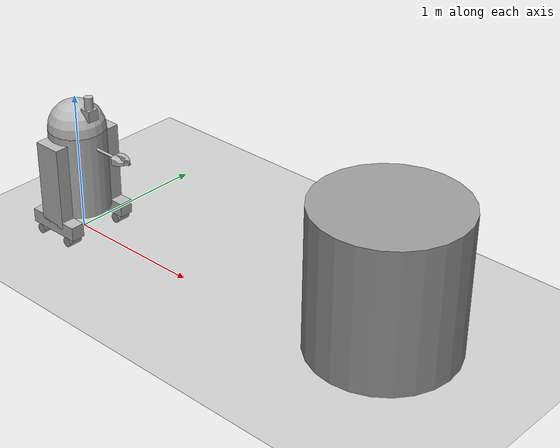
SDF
<sdf version="1.7">
 <world name="default">
  <light name="sun" type="directional">
   <pose>0 0 10 0 -0 0</pose>
   <diffuse>0.8 0.8 0.8 1</diffuse>
   <specular>0.2 0.2 0.2 1</specular>
   <attenuation>
    <range>1000</range>
    <constant>0.9</constant>
    <linear>0.01</linear>
    <quadratic>0.001</quadratic>
   </attenuation>
   <direction>-0.5 0.1 -0.9</direction>
   <spot><inner_angle>0</inner_angle><outer_angle>0</outer_angle><falloff>0</falloff></spot>
  </light>
  <model name="ground_plane">
   <static>1</static>
   <link name="link">
    <collision name="collision">
     <geometry><plane><normal>0 0 1</normal><size>100 100</size></plane></geometry>
     <surface><friction><ode><mu>100</mu><mu2>50</mu2></ode></friction></surface>
    </collision>
    <visual name="visual">
     <cast_shadows>0</cast_shadows>
     <geometry><plane><normal>0 0 1</normal><size>100 100</size></plane></geometry>
     <material>
      <script><uri>file://media/materials/scripts/gazebo.material</uri><name>Gazebo/Grey</name></script>
     </material>
    </visual>
   </link>
  </model>
  <gravity>0 0 -9.8</gravity>
  <magnetic_field>6e-06 2.3e-05 -4.2e-05</magnetic_field>
  <atmosphere type="adiabatic"/>
  <physics type="ode">
   <max_step_size>0.001</max_step_size>
   <real_time_factor>1</real_time_factor>
   <real_time_update_rate>1000</real_time_update_rate>
  </physics>
  <scene><ambient>0.4 0.4 0.4 1</ambient><background>0.7 0.7 0.7 1</background><shadows>1</shadows></scene>
  <spherical_coordinates>
   <surface_model>EARTH_WGS84</surface_model>
   <latitude_deg>0</latitude_deg>
   <longitude_deg>0</longitude_deg>
   <elevation>0</elevation>
   <heading_deg>0</heading_deg>
  </spherical_coordinates>
  <model name="robot">
   <link name="base_link">
    <inertial>
     <pose>0 0 -0.04 0 -0 0</pose>
     <mass>50</mass>
     <inertia><ixx>10.556</ixx><ixy>0</ixy><ixz>0</ixz><iyy>8.62</iyy><iyz>0</iyz><izz>6.936</izz></inertia>
    </inertial>
    <collision name="base_link_collision">
     <geometry><cylinder><length>0.6</length><radius>0.2</radius></cylinder></geometry>
    </collision>
    <collision name="base_link_fixed_joint_lump__left_leg_collision_1">
     <pose>0 0.22 -0.05 3.14159 1.57079 3.14159</pose>
     <geometry><box><size>0.6 0.1 0.2</size></box></geometry>
    </collision>
    <collision name="base_link_fixed_joint_lump__left_base_collision_2">
     <pose>0 0.22 -0.35 0 -0 0</pose>
     <geometry><box><size>0.4 0.1 0.1</size></box></geometry>
    </collision>
    <collision name="base_link_fixed_joint_lump__right_leg_collision_3">
     <pose>0 -0.22 -0.05 3.14159 1.57079 3.14159</pose>
     <geometry><box><size>0.6 0.1 0.2</size></box></geometry>
    </collision>
    <collision name="base_link_fixed_joint_lump__right_base_collision_4">
     <pose>0 -0.22 -0.35 0 -0 0</pose>
     <geometry><box><size>0.4 0.1 0.1</size></box></geometry>
    </collision>
    <visual name="base_link_visual">
     <geometry><cylinder><length>0.6</length><radius>0.2</radius></cylinder></geometry>
    </visual>
    <visual name="base_link_fixed_joint_lump__left_leg_visual_1">
     <pose>0 0.22 -0.05 3.14159 1.57079 3.14159</pose>
     <geometry><box><size>0.6 0.1 0.2</size></box></geometry>
    </visual>
    <visual name="base_link_fixed_joint_lump__left_base_visual_2">
     <pose>0 0.22 -0.35 0 -0 0</pose>
     <geometry><box><size>0.4 0.1 0.1</size></box></geometry>
    </visual>
    <visual name="base_link_fixed_joint_lump__right_leg_visual_3">
     <pose>0 -0.22 -0.05 3.14159 1.57079 3.14159</pose>
     <geometry><box><size>0.6 0.1 0.2</size></box></geometry>
    </visual>
    <visual name="base_link_fixed_joint_lump__right_base_visual_4">
     <pose>0 -0.22 -0.35 0 -0 0</pose>
     <geometry><box><size>0.4 0.1 0.1</size></box></geometry>
    </visual>
   </link>
   <joint name="left_back_wheel_joint" type="revolute">
    <pose relative_to="base_link">-0.133333 0.22 -0.435 0 -0 0</pose>
    <parent>base_link</parent>
    <child>left_back_wheel</child>
    <axis>
     <xyz>0 1 0</xyz>
     <limit><lower>-1e+16</lower><upper>1e+16</upper></limit>
     <dynamics><spring_reference>0</spring_reference><spring_stiffness>0</spring_stiffness></dynamics>
    </axis>
   </joint>
   <link name="left_back_wheel">
    <pose relative_to="left_back_wheel_joint">0 0 0 0 -0 0</pose>
    <inertial>
     <mass>1</mass>
     <inertia><ixx>1</ixx><ixy>0</ixy><ixz>0</ixz><iyy>1</iyy><iyz>0</iyz><izz>1</izz></inertia>
    </inertial>
    <collision name="left_back_wheel_collision">
     <pose>0 0 0 1.5708 -0 0</pose>
     <geometry><cylinder><length>0.1</length><radius>0.035</radius></cylinder></geometry>
     <surface>
      <contact><ode><kp>1e+07</kp><kd>1</kd></ode></contact>
      <friction><ode><mu>200</mu><mu2>100</mu2></ode></friction>
     </surface>
    </collision>
    <visual name="left_back_wheel_visual">
     <pose>0 0 0 1.5708 -0 0</pose>
     <geometry><cylinder><length>0.1</length><radius>0.035</radius></cylinder></geometry>
     <material>
      <script><name>Gazebo/Grey</name><uri>file://media/materials/scripts/gazebo.material</uri></script>
     </material>
    </visual>
   </link>
   <joint name="left_front_wheel_joint" type="revolute">
    <pose relative_to="base_link">0.133333 0.22 -0.435 0 -0 0</pose>
    <parent>base_link</parent>
    <child>left_front_wheel</child>
    <axis>
     <xyz>0 1 0</xyz>
     <limit><lower>-1e+16</lower><upper>1e+16</upper></limit>
     <dynamics><spring_reference>0</spring_reference><spring_stiffness>0</spring_stiffness></dynamics>
    </axis>
   </joint>
   <link name="left_front_wheel">
    <pose relative_to="left_front_wheel_joint">0 0 0 0 -0 0</pose>
    <inertial>
     <mass>1</mass>
     <inertia><ixx>1</ixx><ixy>0</ixy><ixz>0</ixz><iyy>1</iyy><iyz>0</iyz><izz>1</izz></inertia>
    </inertial>
    <collision name="left_front_wheel_collision">
     <pose>0 0 0 1.5708 -0 0</pose>
     <geometry><cylinder><length>0.1</length><radius>0.035</radius></cylinder></geometry>
     <surface>
      <contact><ode><kp>1e+07</kp><kd>1</kd></ode></contact>
      <friction><ode><mu>200</mu><mu2>100</mu2></ode></friction>
     </surface>
    </collision>
    <visual name="left_front_wheel_visual">
     <pose>0 0 0 1.5708 -0 0</pose>
     <geometry><cylinder><length>0.1</length><radius>0.035</radius></cylinder></geometry>
     <material>
      <script><name>Gazebo/Grey</name><uri>file://media/materials/scripts/gazebo.material</uri></script>
     </material>
    </visual>
   </link>
   <joint name="right_back_wheel_joint" type="revolute">
    <pose relative_to="base_link">-0.133333 -0.22 -0.435 0 -0 0</pose>
    <parent>base_link</parent>
    <child>right_back_wheel</child>
    <axis>
     <xyz>0 1 0</xyz>
     <limit><lower>-1e+16</lower><upper>1e+16</upper></limit>
     <dynamics><spring_reference>0</spring_reference><spring_stiffness>0</spring_stiffness></dynamics>
    </axis>
   </joint>
   <link name="right_back_wheel">
    <pose relative_to="right_back_wheel_joint">0 0 0 0 -0 0</pose>
    <inertial>
     <mass>1</mass>
     <inertia><ixx>1</ixx><ixy>0</ixy><ixz>0</ixz><iyy>1</iyy><iyz>0</iyz><izz>1</izz></inertia>
    </inertial>
    <collision name="right_back_wheel_collision">
     <pose>0 0 0 1.5708 -0 0</pose>
     <geometry><cylinder><length>0.1</length><radius>0.035</radius></cylinder></geometry>
     <surface>
      <contact><ode><kp>1e+07</kp><kd>1</kd></ode></contact>
      <friction><ode><mu>200</mu><mu2>100</mu2></ode></friction>
     </surface>
    </collision>
    <visual name="right_back_wheel_visual">
     <pose>0 0 0 1.5708 -0 0</pose>
     <geometry><cylinder><length>0.1</length><radius>0.035</radius></cylinder></geometry>
     <material>
      <script><name>Gazebo/Grey</name><uri>file://media/materials/scripts/gazebo.material</uri></script>
     </material>
    </visual>
   </link>
   <joint name="right_front_wheel_joint" type="revolute">
    <pose relative_to="base_link">0.133333 -0.22 -0.435 0 -0 0</pose>
    <parent>base_link</parent>
    <child>right_front_wheel</child>
    <axis>
     <xyz>0 1 0</xyz>
     <limit><lower>-1e+16</lower><upper>1e+16</upper></limit>
     <dynamics><spring_reference>0</spring_reference><spring_stiffness>0</spring_stiffness></dynamics>
    </axis>
   </joint>
   <link name="right_front_wheel">
    <pose relative_to="right_front_wheel_joint">0 0 0 0 -0 0</pose>
    <inertial>
     <mass>1</mass>
     <inertia><ixx>1</ixx><ixy>0</ixy><ixz>0</ixz><iyy>1</iyy><iyz>0</iyz><izz>1</izz></inertia>
    </inertial>
    <collision name="right_front_wheel_collision">
     <pose>0 0 0 1.5708 -0 0</pose>
     <geometry><cylinder><length>0.1</length><radius>0.035</radius></cylinder></geometry>
     <surface>
      <contact><ode><kp>1e+07</kp><kd>1</kd></ode></contact>
      <friction><ode><mu>200</mu><mu2>100</mu2></ode></friction>
     </surface>
    </collision>
    <visual name="right_front_wheel_visual">
     <pose>0 0 0 1.5708 -0 0</pose>
     <geometry><cylinder><length>0.1</length><radius>0.035</radius></cylinder></geometry>
     <material>
      <script><name>Gazebo/Grey</name><uri>file://media/materials/scripts/gazebo.material</uri></script>
     </material>
    </visual>
   </link>
   <joint name="gripper_extension" type="prismatic">
    <pose relative_to="base_link">0.19 0 0.2 0 -0 0</pose>
    <parent>base_link</parent>
    <child>gripper_pole</child>
    <axis>
     <xyz>1 0 0</xyz>
     <limit><lower>-0.38</lower><upper>0</upper><effort>1000</effort><velocity>0.5</velocity></limit>
     <dynamics>
      <damping>0</damping>
      <friction>0</friction>
      <spring_reference>0</spring_reference>
      <spring_stiffness>0</spring_stiffness>
     </dynamics>
    </axis>
   </joint>
   <link name="gripper_pole">
    <pose relative_to="gripper_extension">0 0 0 0 -0 0</pose>
    <inertial>
     <mass>0.05</mass>
     <inertia><ixx>1</ixx><ixy>0</ixy><ixz>0</ixz><iyy>1</iyy><iyz>0</iyz><izz>1</izz></inertia>
    </inertial>
    <collision name="gripper_pole_collision">
     <pose>0.1 0 0 3.14159 1.57079 3.14159</pose>
     <geometry><cylinder><length>0.2</length><radius>0.01</radius></cylinder></geometry>
    </collision>
    <visual name="gripper_pole_visual">
     <pose>0.1 0 0 3.14159 1.57079 3.14159</pose>
     <geometry><cylinder><length>0.2</length><radius>0.01</radius></cylinder></geometry>
    </visual>
   </link>
   <joint name="left_gripper_joint" type="revolute">
    <pose relative_to="gripper_pole">0.2 0.01 0 0 -0 0</pose>
    <parent>gripper_pole</parent>
    <child>left_gripper</child>
    <axis>
     <xyz>0 0 1</xyz>
     <limit><lower>0</lower><upper>0.548</upper><effort>1000</effort><velocity>0.5</velocity></limit>
     <dynamics>
      <damping>0</damping>
      <friction>0</friction>
      <spring_reference>0</spring_reference>
      <spring_stiffness>0</spring_stiffness>
     </dynamics>
    </axis>
   </joint>
   <link name="left_gripper">
    <pose relative_to="left_gripper_joint">0 0 0 0 -0 0</pose>
    <inertial>
     <mass>0.1</mass>
     <inertia><ixx>2</ixx><ixy>0</ixy><ixz>0</ixz><iyy>2</iyy><iyz>0</iyz><izz>2</izz></inertia>
    </inertial>
    <collision name="left_gripper_collision">
     <geometry>
      <mesh><scale>1 1 1</scale><uri>/home/woo/catkin_ws/src/urdf_tutorial/meshes/l_finger.dae</uri></mesh>
     </geometry>
    </collision>
    <collision name="left_gripper_fixed_joint_lump__left_tip_collision_1">
     <pose>0.09137 0.00495 0 0 -0 0</pose>
     <geometry>
      <mesh><scale>1 1 1</scale><uri>/home/woo/catkin_ws/src/urdf_tutorial/meshes/l_finger_tip.dae</uri></mesh>
     </geometry>
    </collision>
    <visual name="left_gripper_visual">
     <geometry>
      <mesh><scale>1 1 1</scale><uri>/home/woo/catkin_ws/src/urdf_tutorial/meshes/l_finger.dae</uri></mesh>
     </geometry>
    </visual>
    <visual name="left_gripper_fixed_joint_lump__left_tip_visual_1">
     <pose>0.09137 0.00495 0 0 -0 0</pose>
     <geometry>
      <mesh><scale>1 1 1</scale><uri>/home/woo/catkin_ws/src/urdf_tutorial/meshes/l_finger_tip.dae</uri></mesh>
     </geometry>
    </visual>
   </link>
   <joint name="right_gripper_joint" type="revolute">
    <pose relative_to="gripper_pole">0.2 -0.01 0 0 -0 0</pose>
    <parent>gripper_pole</parent>
    <child>right_gripper</child>
    <axis>
     <xyz>0 0 -1</xyz>
     <limit><lower>0</lower><upper>0.548</upper><effort>1000</effort><velocity>0.5</velocity></limit>
     <dynamics>
      <damping>0</damping>
      <friction>0</friction>
      <spring_reference>0</spring_reference>
      <spring_stiffness>0</spring_stiffness>
     </dynamics>
    </axis>
   </joint>
   <link name="right_gripper">
    <pose relative_to="right_gripper_joint">0 0 0 0 -0 0</pose>
    <inertial>
     <mass>0.1</mass>
     <inertia><ixx>2</ixx><ixy>0</ixy><ixz>0</ixz><iyy>2</iyy><iyz>0</iyz><izz>2</izz></inertia>
    </inertial>
    <collision name="right_gripper_collision">
     <pose>0 0 0 -3.14159 0 0</pose>
     <geometry>
      <mesh><scale>1 1 1</scale><uri>/home/woo/catkin_ws/src/urdf_tutorial/meshes/l_finger.dae</uri></mesh>
     </geometry>
    </collision>
    <collision name="right_gripper_fixed_joint_lump__right_tip_collision_1">
     <pose>0.09137 0.00495 0 -3.14159 0 0</pose>
     <geometry>
      <mesh><scale>1 1 1</scale><uri>/home/woo/catkin_ws/src/urdf_tutorial/meshes/l_finger_tip.dae</uri></mesh>
     </geometry>
    </collision>
    <visual name="right_gripper_visual">
     <pose>0 0 0 -3.14159 0 0</pose>
     <geometry>
      <mesh><scale>1 1 1</scale><uri>/home/woo/catkin_ws/src/urdf_tutorial/meshes/l_finger.dae</uri></mesh>
     </geometry>
    </visual>
    <visual name="right_gripper_fixed_joint_lump__right_tip_visual_1">
     <pose>0.09137 0.00495 0 -3.14159 0 0</pose>
     <geometry>
      <mesh><scale>1 1 1</scale><uri>/home/woo/catkin_ws/src/urdf_tutorial/meshes/l_finger_tip.dae</uri></mesh>
     </geometry>
    </visual>
   </link>
   <joint name="head_swivel" type="revolute">
    <pose relative_to="base_link">0 0 0.3 0 -0 0</pose>
    <parent>base_link</parent>
    <child>head</child>
    <axis>
     <xyz>0 0 1</xyz>
     <limit><effort>30</effort><velocity>1</velocity><lower>-1e+16</lower><upper>1e+16</upper></limit>
     <dynamics>
      <damping>0</damping>
      <friction>0</friction>
      <spring_reference>0</spring_reference>
      <spring_stiffness>0</spring_stiffness>
     </dynamics>
    </axis>
   </joint>
   <link name="head">
    <pose relative_to="head_swivel">0 0 0 0 -0 0</pose>
    <inertial>
     <pose>0.066692 0 0.060769 0 -0 0</pose>
     <mass>3.25</mass>
     <inertia>
      <ixx>2.02079</ixx>
      <ixy>0</ixy>
      <ixz>-0.0204108</ixz>
      <iyy>2.04424</iyy>
      <iyz>0</iyz>
      <izz>2.02356</izz>
     </inertia>
    </inertial>
    <collision name="head_collision"><geometry><sphere><radius>0.2</radius></sphere></geometry></collision>
    <collision name="head_fixed_joint_lump__box_collision_1">
     <pose>0.1814 0 0.1414 0 -0 0</pose>
     <geometry><box><size>0.08 0.08 0.08</size></box></geometry>
    </collision>
    <collision name="head_fixed_joint_lump__lidar_link_collision_2">
     <pose>0.1414 0 0.2244 0 -0 0</pose>
     <geometry><cylinder><length>0.086</length><radius>0.03</radius></cylinder></geometry>
    </collision>
    <visual name="head_visual"><geometry><sphere><radius>0.2</radius></sphere></geometry></visual>
    <visual name="head_fixed_joint_lump__box_visual_1">
     <pose>0.1414 0 0.1414 0 -0 0</pose>
     <geometry><box><size>0.08 0.08 0.08</size></box></geometry>
    </visual>
    <visual name="head_fixed_joint_lump__lidar_link_visual_2">
     <pose>0.1414 0 0.2244 0 -0 0</pose>
     <geometry><cylinder><length>0.086</length><radius>0.03</radius></cylinder></geometry>
    </visual>
    <sensor name="lidar" type="ray">
     <visualize>1</visualize>
     <update_rate>15</update_rate>
     <ray>
      <scan>
       <horizontal>
        <samples>400</samples>
        <resolution>1</resolution>
        <min_angle>-2.35619</min_angle>
        <max_angle>2.35619</max_angle>
       </horizontal>
       <vertical><samples>1</samples><min_angle>0</min_angle><max_angle>0</max_angle></vertical>
      </scan>
      <range><min>0.05</min><max>25</max><resolution>0.001</resolution></range>
      <noise><type>gaussian</type><mean>0</mean><stddev>0.01</stddev></noise>
     </ray>
     <plugin name="gazebo_ros_lidar_controller" filename="libgazebo_ros_laser.so">
      <topicName>scan</topicName>
      <frameName>lidar_link</frameName>
      <robotNamespace>/</robotNamespace>
     </plugin>
     <pose>0.1414 0 0.2244 0 -0 0</pose>
    </sensor>
   </link>
   <static>0</static>
   <plugin name="gazebo_ros_control" filename="libgazebo_ros_control.so">
    <robotNamespace>/</robotNamespace>
   </plugin>
   <pose>4e-06 0 0.469993 0 2e-06 2.1e-05</pose>
  </model>
  <model name="unit_cylinder">
   <pose>2.4173 0.298928 0.499997 3e-06 4e-06 -0</pose>
   <link name="link">
    <inertial>
     <mass>1</mass>
     <inertia><ixx>0.145833</ixx><ixy>0</ixy><ixz>0</ixz><iyy>0.145833</iyy><iyz>0</iyz><izz>0.125</izz></inertia>
    </inertial>
    <collision name="collision">
     <geometry><cylinder><radius>0.5</radius><length>1</length></cylinder></geometry>
    </collision>
    <visual name="visual">
     <geometry><cylinder><radius>0.5</radius><length>1</length></cylinder></geometry>
     <material>
      <script><name>Gazebo/Grey</name><uri>file://media/materials/scripts/gazebo.material</uri></script>
     </material>
    </visual>
   </link>
  </model>
 </world>
</sdf>
